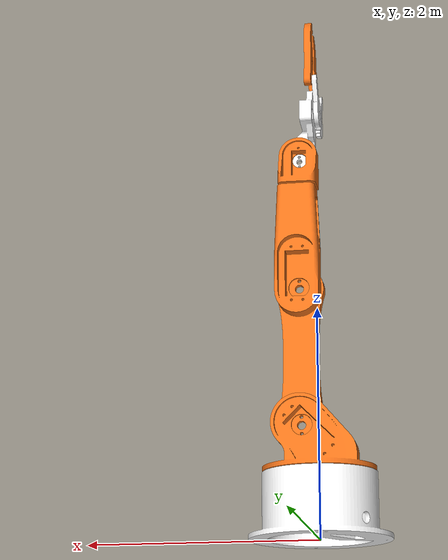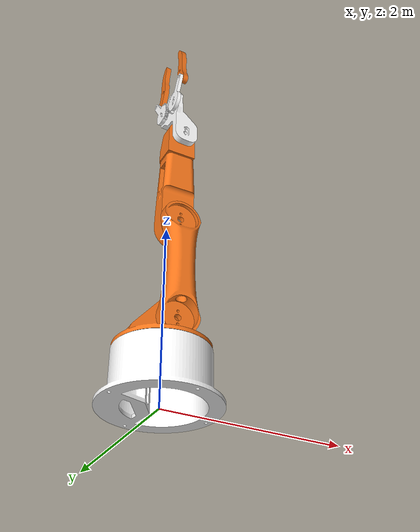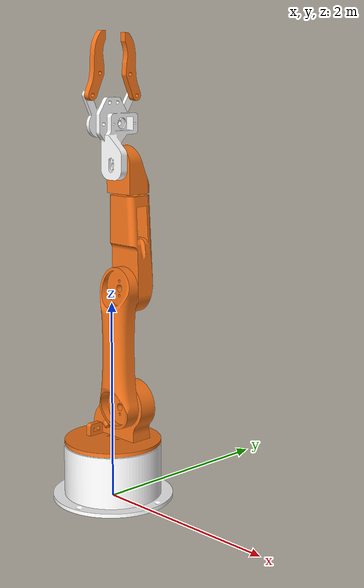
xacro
<?xml version="1.0" ?>
<robot name="Robotic" xmlns:xacro="http://www.ros.org/wiki/xacro">

  <xacro:include filename="$(find roboticarm_description)/urdf/roboticArm.gazebo.xacro" />

  <xacro:property name="PI" value="3.14159265359" />
  <xacro:property name="effort" value="30" />
  <xacro:property name="velocity" value="10" />

  <xacro:macro name="default_inertial" params="mass">
    <inertial>
      <mass value="${mass}" />
      <inertia ixx="1.0" ixy="0.0" ixz="0.0"
                iyy="1.0" iyz="0.0"
                izz="1.0" />
    </inertial>
  </xacro:macro>

  <material name="white">
    <color rgba="1.0 1.0 1.0 1.0"/>
  </material>

  <material name="orange">
    <color rgba="0.95 0.45 0.10 1.0"/>
  </material>

  <link name="world"/>

  <link name="base_link">
    <xacro:default_inertial mass="1"/>
    <visual>
      <origin xyz="0 0 0" rpy="0 0 0"/>
      <geometry>
        <mesh filename="package://roboticarm_description/meshes/base_link.stl" scale="0.01 0.01 0.01"/>
      </geometry>
      <material name="white"/>
    </visual>
    <collision>
      <origin xyz="0 0 0" rpy="0 0 0"/>
      <geometry>
        <mesh filename="package://roboticarm_description/meshes/base_link.stl" scale="0.01 0.01 0.01"/>
      </geometry>
    </collision>
  </link>

  <joint name="base_joint" type="fixed">
    <parent link="world"/>
    <child link="base_link"/>
    <origin xyz="0 0 0" rpy="0 0 0"/>
  </joint>

  <link name="waist_link">
    <xacro:default_inertial mass="0.1"/>
    <visual>
      <origin xyz="0 0 0" rpy="0 0 0"/>
      <geometry>
        <mesh filename="package://roboticarm_description/meshes/Waist.stl" scale="0.01 0.01 0.01"/>
      </geometry>
      <material name="orange"/>
    </visual>
    <collision>
      <origin xyz="0 0 0" rpy="0 0 0"/>
      <geometry>
        <mesh filename="package://roboticarm_description/meshes/Waist.stl" scale="0.01 0.01 0.01"/>
      </geometry>
    </collision>
  </link>

  <joint name="waist_joint" type="revolute">
    <parent link="base_link"/>
    <child link="waist_link"/>
    <origin xyz="0 0 0" rpy="0 0 0"/>
    <axis xyz="0 0 1"/>
    <limit lower="${-PI/2}" upper="${PI/2}" effort="${effort}" velocity="${velocity}"/>
  </joint>

  <link name="arm_1_link">
    <xacro:default_inertial mass="0.1"/>
    <visual>
      <origin xyz="-0.14 0 -0.97" rpy="0 0 0"/>
      <geometry>
        <mesh filename="package://roboticarm_description/meshes/Arm01_1.stl" scale="0.01 0.01 0.01"/>
      </geometry>
      <material name="orange"/>
    </visual>
    <collision>
      <origin xyz="0 0 0" rpy="0 0 0"/>
      <geometry>
        <mesh filename="package://roboticarm_description/meshes/Arm01_1.stl" scale="0.01 0.01 0.01"/>
      </geometry>
    </collision>
  </link>

  <joint name="arm_1_joint" type="revolute">
    <parent link="waist_link"/>
    <child link="arm_1_link"/>
    <origin xyz="0.14 0 0.97" rpy="0 0 0"/>
    <axis xyz="0 1 0"/>
    <limit lower="${-PI/2}" upper="${PI/2}" effort="${effort}" velocity="${velocity}"/>
  </joint>

  <link name="arm_2_link">
    <xacro:default_inertial mass="0.1"/>
    <visual>
      <origin xyz="-0.15 0 -2.17" rpy="0 0 0"/>
      <geometry>
        <mesh filename="package://roboticarm_description/meshes/Arm02_1.stl" scale="0.01 0.01 0.01"/>
      </geometry>
      <material name="orange"/>
    </visual>
    <collision>
      <origin xyz="0 0 0" rpy="0 0 0"/>
      <geometry>
        <mesh filename="package://roboticarm_description/meshes/Arm02_1.stl" scale="0.01 0.01 0.01"/>
      </geometry>
    </collision>
  </link>

  <joint name="arm_2_joint" type="revolute">
    <parent link="arm_1_link"/>
    <child link="arm_2_link"/>
    <origin xyz="0.01 0 1.2" rpy="0 0 0"/>
    <axis xyz="0 1 0"/>
    <limit lower="${-PI/2}" upper="${PI/2}" effort="${effort}" velocity="${velocity}"/>
  </joint>

  <link name="arm_3_link">
    <xacro:default_inertial mass="0.1"/>
    <visual>
      <origin xyz="-0.21 -0.135 -2.66" rpy="0 0 0"/>
      <geometry>
        <mesh filename="package://roboticarm_description/meshes/Arm03_1.stl" scale="0.01 0.01 0.01"/>
      </geometry>
      <material name="orange"/>
    </visual>
    <collision>
      <origin xyz="0 0 0" rpy="0 0 0"/>
      <geometry>
        <mesh filename="package://roboticarm_description/meshes/Arm03_1.stl" scale="0.01 0.01 0.01"/>
      </geometry>
    </collision>
  </link>

  <joint name="arm_3_joint" type="revolute">
    <parent link="arm_2_link"/>
    <child link="arm_3_link"/>
    <origin xyz="0.05 0.11 0.5" rpy="0 0 0"/>
    <axis xyz="0 0 1"/>
    <limit lower="${-PI/2}" upper="${PI/2}" effort="${effort}" velocity="${velocity}"/>
  </joint>

  <link name="gripper_base_link">
    <xacro:default_inertial mass="0.05"/>
    <visual>
      <origin xyz="-0.15 -0.14 -3.38" rpy="0 0 0"/>
      <geometry>
        <mesh filename="package://roboticarm_description/meshes/Gripper_base.stl" scale="0.01 0.01 0.01"/>
      </geometry>
      <material name="white"/>
    </visual>
    <collision>
      <origin xyz="0 0 0" rpy="0 0 0"/>
      <geometry>
        <mesh filename="package://roboticarm_description/meshes/Gripper_base.stl" scale="0.01 0.01 0.01"/>
      </geometry>
    </collision>
  </link>

  <joint name="gripper_base_joint" type="revolute">
    <parent link="arm_3_link"/>
    <child link="gripper_base_link"/>
    <origin xyz="-0.05 0 0.71" rpy="0 0 0"/>
    <axis xyz="0 1 0"/>
    <limit lower="${-PI/2}" upper="${PI/2}" effort="${effort}" velocity="${velocity}"/>
  </joint>

  <link name="gear1_link">
    <xacro:default_inertial mass="0.03"/>
    <visual>
      <origin xyz="-0.02 -0.17 -3.75" rpy="0 0 0"/>
      <geometry>
        <mesh filename="package://roboticarm_description/meshes/gear2.002.stl" scale="0.01 0.01 0.01"/>
      </geometry>
      <material name="white"/>
    </visual>
    <collision>
      <origin xyz="0 0 0" rpy="0 0 0"/>
      <geometry>
        <mesh filename="package://roboticarm_description/meshes/gear2.002.stl" scale="0.01 0.01 0.01"/>
      </geometry>
    </collision>
  </link>

  <joint name="gear1_joint" type="revolute">
    <parent link="gripper_base_link"/>
    <child link="gear1_link"/>
    <origin xyz="-0.14 0.03 0.37" rpy="0 0 0"/>
    <axis xyz="1 0 0"/>
    <limit lower="${-PI/2}" upper="${PI/2}" effort="${effort}" velocity="${velocity}"/>
  </joint>

  <link name="gear2_link">
    <xacro:default_inertial mass="0.03"/>
    <visual>
      <origin xyz="-0.02 0.1 -3.75" rpy="0 0 0"/>
      <geometry>
        <mesh filename="package://roboticarm_description/meshes/gear2.stl" scale="0.01 0.01 0.01"/>
      </geometry>
      <material name="white"/>
    </visual>
    <collision>
      <origin xyz="0 0 0" rpy="0 0 0"/>
      <geometry>
        <mesh filename="package://roboticarm_description/meshes/gear2.stl" scale="0.01 0.01 0.01"/>
      </geometry>
    </collision>
  </link>

  <joint name="gear2_joint" type="revolute">
    <parent link="gripper_base_link"/>
    <child link="gear2_link"/>
    <origin xyz="-0.12 -0.245 0.366" rpy="0 0 0"/>
    <axis xyz="1 0 0"/>
    <mimic joint="gear1_joint" multiplier="-1.0" offset="0.0"/>
    <limit lower="${-PI/2}" upper="${PI/2}" effort="${effort}" velocity="${velocity}"/>
  </joint>

  <link name="finger1_link">
    <xacro:default_inertial mass="0.01"/>
    <visual>
      <origin xyz="0.03 0.24 -4.03" rpy="0 0 0"/>
      <geometry>
        <mesh filename="package://roboticarm_description/meshes/Gripper_1.001.stl" scale="0.01 0.01 0.01"/>
      </geometry>
      <material name="orange"/>
    </visual>
    <collision>
      <origin xyz="0 0 0" rpy="0 0 0"/>
      <geometry>
        <mesh filename="package://roboticarm_description/meshes/Gripper_1.001.stl" scale="0.01 0.01 0.01"/>
      </geometry>
    </collision>
  </link>

  <joint name="finger1_joint" type="fixed">
    <parent link="gear2_link"/>
    <child link="finger1_link"/>
    <origin xyz="-0.055 -0.137 0.279" rpy="0 0 0"/>
    <axis xyz="0 1 0"/>
    <limit lower="${-PI/2}" upper="${PI/2}" effort="${effort}" velocity="${velocity}"/>
  </joint>

  <link name="finger2_link">
    <xacro:default_inertial mass="0.01"/>
    <visual>
      <origin xyz="0.03 -0.328 -4.01" rpy="0 0 0"/>
      <geometry>
        <mesh filename="package://roboticarm_description/meshes/Gripper_1.stl" scale="0.01 0.01 0.01"/>
      </geometry>
      <material name="orange"/>
    </visual>
    <collision>
      <origin xyz="0 0 0" rpy="0 0 0"/>
      <geometry>
        <mesh filename="package://roboticarm_description/meshes/Gripper_1.stl" scale="0.01 0.01 0.01"/>
      </geometry>
    </collision>
  </link>

  <joint name="finger2_joint" type="fixed">
    <parent link="gear1_link"/>
    <child link="finger2_link"/>
    <origin xyz="-0.055 0.162 0.26" rpy="0 0 0"/>
    <axis xyz="0 1 0"/>
    <limit lower="${-PI/2}" upper="${PI/2}" effort="${effort}" velocity="${velocity}"/>
  </joint>

</robot>
